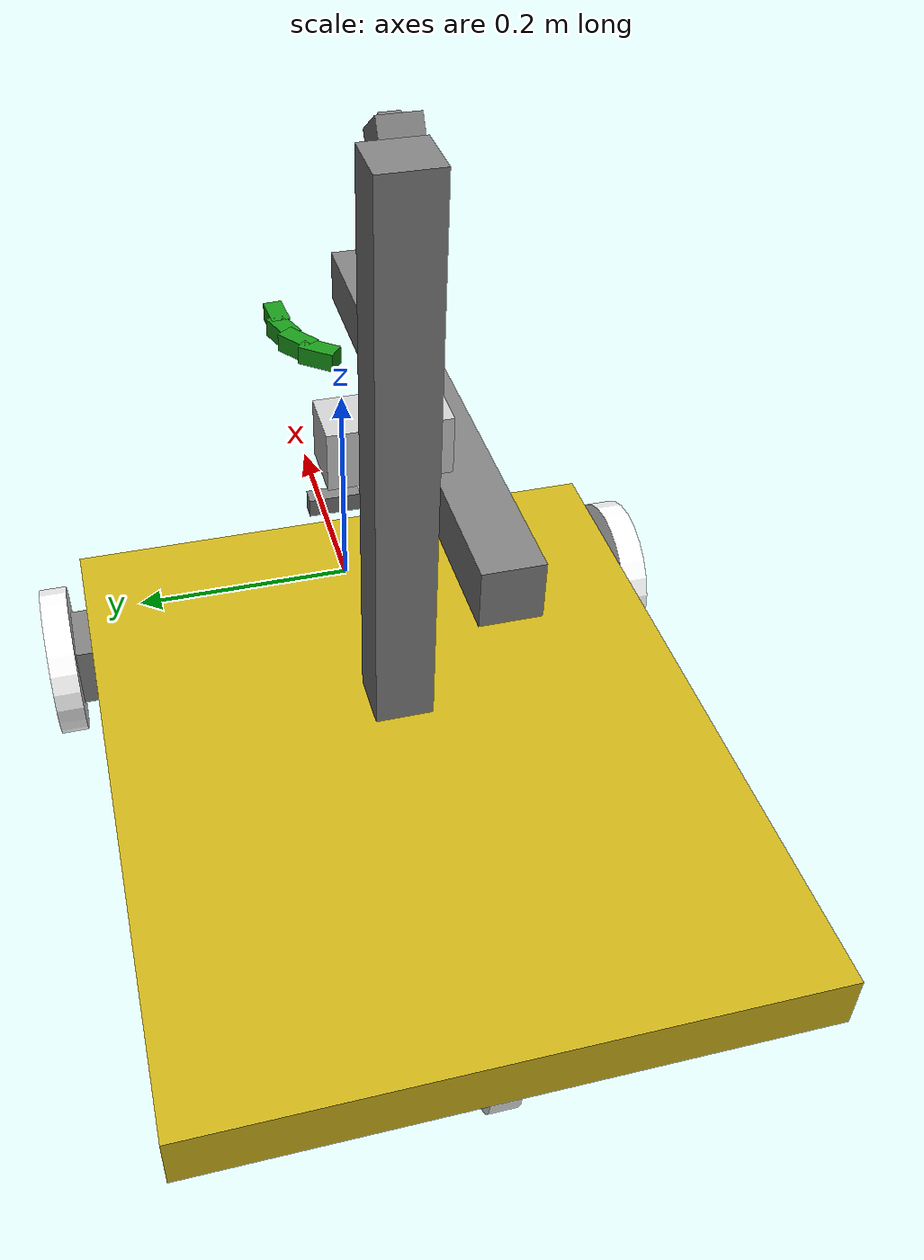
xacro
<?xml version="1.0"?>
<robot name="popcanbot" xmlns:xacro="http://wiki.ros.org/xacro">

<xacro:property name="car_length" value="0.609"/>
<xacro:property name="car_width" value="0.5"/>
<xacro:property name="car_height" value="0.05"/>
<xacro:property name="clearance" value="0.10"/>
<xacro:property name="wheel_separation" value="0.56"/>
<xacro:property name="wheel_width" value="0.025"/>
<xacro:property name="wheel_radius" value="0.07"/>
<xacro:property name="caster_wheel_radius" value="0.04"/>
<xacro:property name="use_camera" value="true"/>

<xacro:property name="gripper_left_lower_lim" value="-0.5"/>
<xacro:property name="gripper_left_upper_lim" value="0.0"/>
<xacro:property name="gripper_right_lower_lim" value="-0.5"/>
<xacro:property name="gripper_right_upper_lim" value="0.0"/>
<!-- TODO(lwalter) pass these in as args -->

<xacro:include filename="$(find popcanbot_description)/urdf/popcanbot.gazebo"/>
<xacro:include filename="$(find popcanbot_description)/urdf/util.xacro"/>

  <link name="base_link"/>
  <xacro:block name="chassis_link" length="${car_length}"
      width="${car_width}" height="${car_height}" mass="10.0"
      r="0.8" g="0.7" b="0.1"/>
  <joint name="chassis_joint" type="fixed">
    <parent link="base_link"/>
    <child link="chassis_link"/>
    <origin xyz="${-car_length/2 + 0.05} 0 0" rpy="0 0 0"/>
  </joint>

  <!-- every link has to have inertia in order for it to work in gazebo
    even if it just connects two inertia links- without it the child link
    that doesn't have inertia won't appear.
    -->
  <xacro:block name="caster_block" length="${0.03}"
      width="${0.03}" height="${0.03}" mass="0.1"/>
  <joint name="caster_joint" type="continuous">
    <parent link="base_link"/>
    <child link="caster_block"/>
    <axis xyz="0 0 1"/>
    <origin xyz="${-car_length + 0.1} 0 ${-car_height/2}" rpy="0 0 0"/>
  </joint>
  <xacro:generic_wheel name="wheel_caster" parent="caster_block"
      width="${wheel_width}"
      radius="${caster_wheel_radius}" mass="0.1" use_tran="false"
      x="0.02"
      z="${-(clearance - caster_wheel_radius)}"
      mu1="20" mu2="10"/>

  <xacro:block name="main_axle" length="${car_width/8.0}"
      width="${car_width + 0.05}" height="${car_width/8.0}" mass="0.1"
      />
  <joint name="main_axle_joint" type="fixed">
    <parent link="base_link"/>
    <child link="main_axle"/>
    <origin xyz="0 0 ${-(car_height/2 + clearance - wheel_radius)}"
        rpy="0 0 0"/>
  </joint>

  <xacro:generic_wheel name="wheel_front_left" parent="main_axle"
      y="${wheel_separation/2}"
      width="${wheel_width}" radius="${wheel_radius}"
      use_tran="false"/>
  <xacro:generic_wheel name="wheel_front_right" parent="main_axle"
      y="${-wheel_separation/2}"
      width="${wheel_width}" radius="${wheel_radius}"
      y_axis="1" use_tran="false"/>

  <!-- the arm -->
  <xacro:block name="arm_vertical" length="0.05"
      width="0.05" height="0.5" mass="1.0" z="0.25"/>
  <joint name="arm_vertical_rotary_joint" type="revolute">
    <parent link="base_link"/>
    <child link="arm_vertical"/>
    <origin xyz="${-car_length/3} 0 ${car_height/4}" rpy="0 0 0"/>
    <axis xyz="0 0 -1"/>
    <limit effort="100.0" upper="1.6" lower="-1.6" velocity="0.5"/>
    <dynamics damping="0.1" friction="0.1"/>
  </joint>

  <transmission name="arm_vertical_rotary_tran">
    <type>transmission_interface/SimpleTransmission</type>
    <joint name="arm_vertical_rotary_joint">
      <hardwareInterface>EffortJointInterface</hardwareInterface>
    </joint>
    <actuator name="arm_vertical_rotary_motor">
      <hardwareInterface>EffortJointInterface</hardwareInterface>
      <mechanicalReduction>1</mechanicalReduction>
    </actuator>
  </transmission>

  <xacro:block name="arm_vertical_platform" length="0.05"
      width="0.1" height="0.05" mass="0.1"
      r="0.8" g="0.8" b="0.8"/>
  <joint name="arm_vertical_platform_joint" type="prismatic">
    <parent link="arm_vertical"/>
    <child link="arm_vertical_platform"/>
    <origin xyz="0.05 0 0.25" rpy="0 0 0"/>
    <axis xyz="0 0 1"/>
    <limit effort="20.0" velocity="0.25" lower="-0.14" upper="0.35"/>
    <dynamics damping="0.1" friction="0.1"/>
  </joint>
  <transmission name="arm_vertical_rotary_tran">
    <type>transmission_interface/SimpleTransmission</type>
    <joint name="arm_vertical_platform_joint">
      <hardwareInterface>EffortJointInterface</hardwareInterface>
    </joint>
    <actuator name="arm_vertical_platform_motor">
      <hardwareInterface>EffortJointInterface</hardwareInterface>
      <mechanicalReduction>1</mechanicalReduction>
    </actuator>
  </transmission>

  <xacro:block name="arm_horizontal" length="0.5"
      width="0.05" height="0.05" mass="0.2"/>
  <joint name="arm_horizontal_platform_joint" type="prismatic">
    <parent link="arm_vertical_platform"/>
    <child link="arm_horizontal"/>
    <origin xyz="0.1 -0.06 -0.05" rpy="0 0 0"/>
    <axis xyz="1 0 0"/>
    <limit effort="20.0" velocity="0.25" lower="-0.22" upper="0.05"/>
    <dynamics damping="0.1" friction="0.1"/>
  </joint>
  <transmission name="arm_vertical_rotary_tran">
    <type>transmission_interface/SimpleTransmission</type>
    <joint name="arm_horizontal_platform_joint">
      <hardwareInterface>EffortJointInterface</hardwareInterface>
    </joint>
    <actuator name="arm_horizontal_platform_motor">
      <hardwareInterface>EffortJointInterface</hardwareInterface>
      <mechanicalReduction>1</mechanicalReduction>
    </actuator>
  </transmission>

  <!-- gripper -->
  <xacro:macro name="gripper" params="name parent x y z roll pitch yaw ax ay az lower_lim upper_lim">
  <xacro:block name="${name}" length="0.04"
      width="0.02" height="0.02" mass="0.05" r="0.1" b="0.1" g="0.6" x="0.03"
      mu="1.0"/>
  <joint name="${name}_joint" type="revolute">
    <parent link="${parent}"/>
    <child link="${name}"/>
    <origin xyz="${x} ${y} ${z}" rpy="${roll} ${pitch} ${yaw}"/>
    <axis xyz="${ax} ${ay} ${az}"/>
    <limit effort="200.0" upper="${upper_lim}" lower="${lower_lim}" velocity="0.5"/>
    <dynamics damping="0.1" friction="0.1"/>
  </joint>
  <xacro:block name="${name}_mid1" length="0.04"
      width="0.02" height="0.02" mass="0.05" r="0.1" b="0.1" g="0.6" x="0.03"
      mu="1.0"/>
  <joint name="${name}_mid1_joint" type="fixed">
    <parent link="${name}"/>
    <child link="${name}_mid1"/>
    <origin xyz="0.03 0.0 0.0" rpy="0 0 -0.28"/>
  </joint>
  <xacro:block name="${name}_mid2" length="0.04"
      width="0.02" height="0.02" mass="0.05" r="0.1" b="0.1" g="0.6" x="0.03"
      mu="1.0"/>
  <joint name="${name}_mid2_joint" type="fixed">
    <parent link="${name}_mid1"/>
    <child link="${name}_mid2"/>
    <origin xyz="0.03 0.0 0.0" rpy="0 0 -0.28"/>
  </joint>

  <xacro:block name="${name}_tip" length="0.04"
      width="0.02" height="0.02" mass="0.05" r="0.1" b="0.1" g="0.6" x="0.03"
      mu="1.0"/>
  <joint name="${name}_tip_joint" type="fixed">
    <parent link="${name}_mid2"/>
    <child link="${name}_tip"/>
    <origin xyz="0.03 0.0 0.0" rpy="0 0 -0.28"/>
  </joint>

  <transmission name="${name}_rotary_tran">
>>>>>>> 5e5cc29bd81872f5302f9bae12d8c56d68755a0e
    <type>transmission_interface/SimpleTransmission</type>
    <joint name="${name}_joint">
      <hardwareInterface>EffortJointInterface</hardwareInterface>
    </joint>
    <actuator name="${name}_motor">
      <hardwareInterface>EffortJointInterface</hardwareInterface>
      <mechanicalReduction>1</mechanicalReduction>
    </actuator>
  </transmission>
  </xacro:macro>

  <xacro:gripper name="gripper_left"
      parent="arm_horizontal"
      x="0.25" y="0.013" z="-0.1"
      roll="0" pitch="0" yaw="0.9"
      ax="0" ay="0" az="1"
      lower_lim="${gripper_left_lower_lim}" upper_lim="${gripper_left_upper_lim}"/>
  <xacro:gripper name="gripper_right"
      parent="arm_horizontal"
      x="0.25" y="-0.013" z="-0.1"
      roll="${pi}" pitch="0" yaw="-0.9"
      ax="0" ay="0" az="1"
      lower_lim="${gripper_right_lower_lim}" upper_lim="${gripper_right_upper_lim}"/>

  <!-- sensors -->
  <xacro:if value="${use_camera}">
  <xacro:block name="camera_mast" length="0.04"
      width="0.02" height="0.03" mass="0.1"/>
  <joint name="camera_mast_joint" type="prismatic">
    <parent link="arm_horizontal"/>
    <child link="camera_mast"/>
    <origin xyz="0.1 0 0.2" rpy="0 0 0"/>
    <axis xyz="0 0 1"/>
    <limit effort="20.0" velocity="0.25" lower="0.0" upper="0.5"/>
    <dynamics damping="0.1" friction="0.1"/>
  </joint>

  <xacro:block name="camera_link" length="0.05"
      width="0.04" height="0.03" mass="0.1"/>
  <joint name="camera_joint" type="fixed">
    <parent link="camera_mast"/>
    <child link="camera_link"/>
    <origin xyz="0.0 0 0.0" rpy="0 0.6 0"/>
  </joint>

  <link name="camera_link_optical"/>
  <!-- generate an optical frame http://www.ros.org/reps/rep-0103.html#suffix-frames
      so that ros and opencv can operate on the camera frame correctly -->
  <joint name="camera_optical_joint" type="fixed">
    <!-- these values have to be these values otherwise the gazebo camera image
        won't be aligned properly with the frame it is supposedly originating from -->
    <origin xyz="0 0 0" rpy="${-pi/2} 0 ${-pi/2}"/>
    <parent link="camera_link"/>
    <child link="camera_link_optical"/>
  </joint>
  </xacro:if>

  <xacro:block name="sonar_link" length="0.015"
      width="0.05" height="0.02" mass="0.1"/>
  <joint name="sonar_joint" type="fixed">
    <parent link="base_link"/>
    <child link="sonar_link"/>
    <origin xyz="0.05 0 0.05" rpy="0 -0.1 0"/>
  </joint>

</robot>

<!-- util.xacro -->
<robot name="util" xmlns:xacro="http://wiki.ros.org/xacro">

<!-- don't use macro names that are the same as other key names
  like 'box', 'cylinder', etc. otherwise get Invalid parameter "size"
-->
<xacro:macro name="block" params="name length width height mass
    x:=0 y:=0 z:=0
    r:=0.5 b:=0.5 g:=0.5
    mu:=0.0 kp:=1000.0 kd:=1.0">
  <link name="${name}">
     <visual>
      <origin xyz="${x} ${y} ${z}" rpy="0 0 0"/>
      <geometry>
        <box size="${length} ${width} ${height}"/>
      </geometry>
      <material name="${name}_gray">
        <color rgba="${r} ${g} ${b} 1"/>
      </material>
    </visual>
    <collision>
      <origin xyz="${x} ${y} ${z}" rpy="0 0 0"/>
      <geometry>
        <box size="${length} ${width} ${height}"/>
      </geometry>
      <contact_coefficients mu="${mu}" kp="${kp}" kd="${kd}"/>
    </collision>
    <inertial>
      <origin xyz="${x} ${y} ${z}" rpy="0 0 0"/>
      <mass value="${mass}"/>
      <inertia
          ixx="${mass / 12.0 * (width * width + height * height)}" ixy="0.0" ixz="0.0"
          iyy="${mass / 12.0 * (length * length + height * height)}" iyz="0.0"
          izz="${mass / 12.0 * (length * length + width * width)}" />
    </inertial>
  </link>
</xacro:macro>

<!-- a wheel that rotates around the y axis, rolls forward toward the x axis -->
<!--origin xyz="${length/2} ${width/2} ${height/2}" /-->
<xacro:macro name="wheel" params="name width radius mass
    r:=0.5 b:=0.5 g:=0.5
    mu:=0.0 kp:=1000.0 kd:=1.0">
  <link name="${name}">
    <visual>
      <origin xyz="0 0 0" rpy="${pi/2} 0 0" />
      <geometry>
        <cylinder length="${width}" radius="${radius}"/>
      </geometry>
      <material name="${name}_black">
        <color rgba="${r} ${g} ${b} 1"/>
      </material>
    </visual>
    <collision>
      <origin xyz="0 0 0" rpy="${pi/2} 0 0" />
      <geometry>
        <cylinder length="${width}" radius="${radius}"/>
      </geometry>
      <contact_coefficients mu="${mu}" kp="${kp}" kd="${kd}"/>
    </collision>
    <inertial>
      <origin xyz="0 0 0" rpy="${pi/2} 0 0" />
      <mass value="${mass}"/>
      <inertia
          ixx="${mass / 12.0 * (3 * radius * radius + width * width)}" ixy="0.0" ixz="0.0"
          iyy="${mass / 12.0 * (3 * radius * radius + width * width)}" iyz="0.0"
          izz="${mass / 2.0 * (radius * radius)}"/>
    </inertial>
  </link>
  <gazebo reference="${name}">
    <!-- this doesn't work, how to specify rgb color for gazebo? -->
    <!--color rgba="${r} ${g} ${b} 1.0"/-->
  </gazebo>
</xacro:macro>

<xacro:macro name="generic_wheel" params="name parent radius width
    x:=0 y:=0 z:=0
    r:=0.6 g:=0.6 b:=0.6
    y_axis:=1 mass:=0.2 use_tran:=true
    mu1:=200 mu2:=100">

  <xacro:wheel name="${name}" width="${width}" radius="${radius}" mass="${mass}"
      r="1.0" g="1.0" b="1.0"/>
  <joint name="${name}_joint" type="continuous">
    <parent link="${parent}"/>
    <child link="${name}"/>
    <origin xyz="${x} ${y} ${z}" rpy="0 0 0"/>
    <axis xyz="0 ${y_axis} 0"/>
    <limit effort="100.0" velocity="0.5"/>
  </joint>

  <xacro:if value="${use_tran}">
  <transmission name="${name}_tran">
    <type>transmission_interface/SimpleTransmission</type>
    <joint name="${name}_joint">
      <hardwareInterface>EffortJointInterface</hardwareInterface>
    </joint>
    <actuator name="${name}_motor">
      <hardwareInterface>EffortJointInterface</hardwareInterface>
      <mechanicalReduction>1</mechanicalReduction>
    </actuator>
  </transmission>
  </xacro:if>

  <gazebo reference="${name}">
    <mu1>${mu1}</mu1>
    <mu2>${mu2}</mu2>
    <kp value="10000000.0"/>
    <kd value="1.0"/>
  </gazebo>
</xacro:macro>  <!-- generic wheel -->

</robot>
